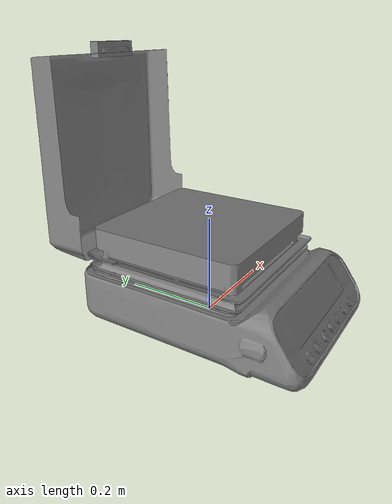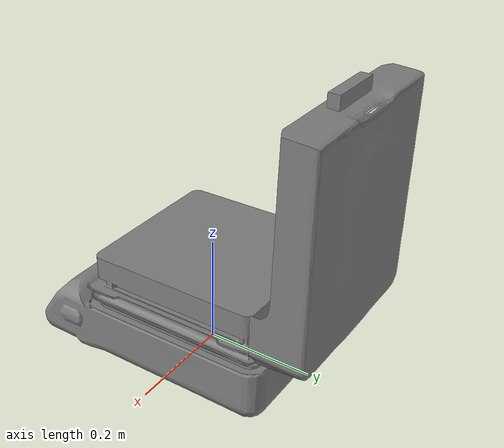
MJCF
<mujoco model="HotPlateHPR6">
  <!-- XML 位于 model/object，返回到 assets -->
  <compiler angle="radian" meshdir="../../assets"/>

  <option gravity="0 0 -9.81"/>

  <asset>
    <!-- 底座 mesh -->
    <mesh
      name="hotplate_hpr6_body_mesh"
      file="HotPlateHPR6/body.obj"
      scale="0.3 0.3 0.3"/>

    <!-- 盖子 mesh -->
    <mesh
      name="hotplate_hpr6_lid_mesh"
      file="HotPlateHPR6/lid.obj"
      scale="0.3 0.3 0.3"/>
  </asset>

  <worldbody>
    <body name="hotplate_hpr6" quat="0.7071 0.7071 0 0">
      <!-- body：视觉几何 -->
      <geom
        name="hotplate_hpr6_body_visual"
        type="mesh"
        mesh="hotplate_hpr6_body_mesh"
        rgba="0.5 0.5 0.5 1"
        contype="0"
        conaffinity="0"/>

      <!-- body：碰撞几何 -->

      <geom name="hotplate_hpr6_body_collision_1"
        type="box"
        size="0.16 0.065 0.21"
        pos="0 0.065 0.03"
        density="7500"
        contype="1"
        conaffinity="1"
        rgba="0 0 0 0"/>
      <geom name="hotplate_hpr6_body_collision_2"
        type="box"
        size="0.143 0.05 0.16"
        density="7500"
        pos="0 0.15 -0.018"
        contype="1"
        conaffinity="1"
        rgba="0 0 0 0"/>

      <!-- lid：单独子 body -->
      <body
        name="hotplate_hpr6_lid"
        pos="0 0 0"
        quat="1 0 0 0">

        <!-- 盖子的转轴关节 -->
        <joint
          name="hotplate_hpr6_lid_hinge"
          type="hinge"
          pos="0 0.124 -0.185"
          axis="1 0 0"
          range="-0.0 1.57"
          damping="0.2"/>

        <!-- lid：视觉几何 -->
        <geom
          name="hotplate_hpr6_lid_visual"
          type="mesh"
          mesh="hotplate_hpr6_lid_mesh"
          contype="0"
          rgba="0.5 0.5 0.5 1"
          conaffinity="0"/>

        <!-- lid：碰撞几何 -->

        <geom name="hotplate_hpr6_lid_collision_1"
          type="box"
          size="0.16 0.185 0.005"
          density="2500"
          pos="0 0.32 -0.27"
          contype="1"
          conaffinity="1"
          friction="1.0 0.3 0.001"
          rgba="0 0 0 0"/>
        <geom name="hotplate_hpr6_lid_collision_2"
          type="box"
          density="2500"
          size="0.005 0.185 0.03"
          pos="0.17 0.32 -0.24"
          contype="1"
          conaffinity="1"
          friction="1.0 0.3 0.001"
          rgba="0 0 0 0"/>
        <geom name="hotplate_hpr6_lid_collision_3"
          type="box"
          density="2500"
          size="0.005 0.185 0.03"
          pos="-0.17 0.32 -0.24"
          contype="1"
          conaffinity="1"
          friction="1.0 0.3 0.001"
          rgba="0 0 0 0"/>
        <geom name="hotplate_hpr6_lid_collision_4"
          type="box"
          size="0.17 0.005 0.03"
          density="2500"
          pos="0 0.51 -0.24"
          contype="1"
          conaffinity="1"
          friction="1.0 0.3 0.001"
          rgba="0 0 0 0"/>
        <geom name="hotplate_hpr6_lid_collision_5"
          type="box"
          size="0.05 0.015 0.01"
          density="2500"
          pos="0 0.52 -0.23"
          contype="1"
          conaffinity="1"
          friction="1.0 0.3 0.001"
          rgba="0.5 0.5 0.5 1"/>

      </body>

    </body>

  </worldbody>

  <actuator>
     <position
      name="lid_control"
      joint="hotplate_hpr6_lid_hinge"
      kp="20"
      ctrlrange="-0 1.57"
      ctrllimited="true"/>
  </actuator>
</mujoco>
